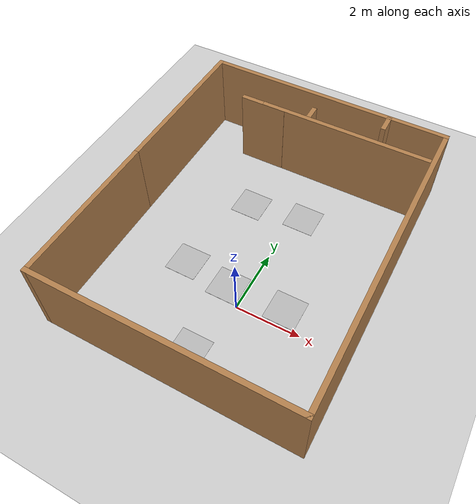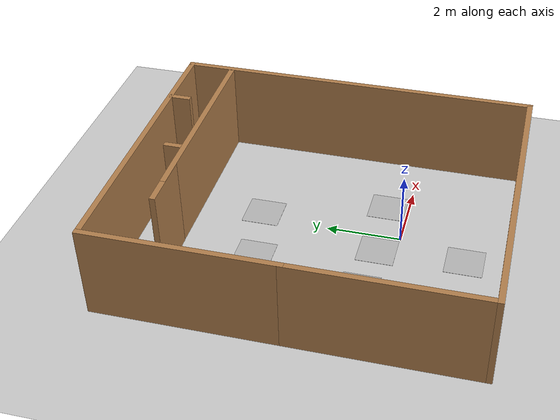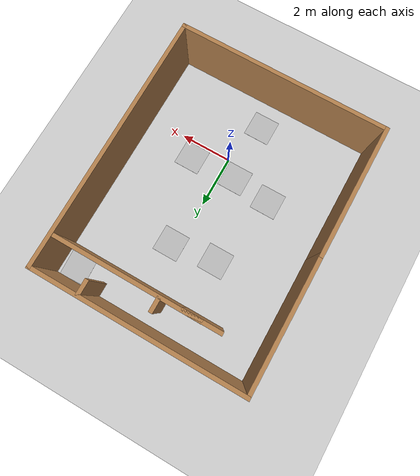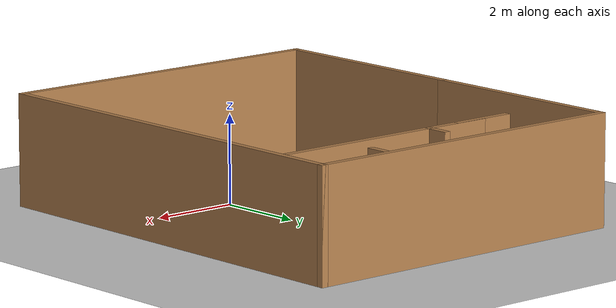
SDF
<sdf version="1.7">
 <world name="default">
  <light name="sun" type="directional">
   <pose>0 0 10 0 -0 0</pose>
   <diffuse>0.8 0.8 0.8 1</diffuse>
   <specular>0.2 0.2 0.2 1</specular>
   <attenuation>
    <range>1000</range>
    <constant>0.9</constant>
    <linear>0.01</linear>
    <quadratic>0.001</quadratic>
   </attenuation>
   <direction>-0.5 0.1 -0.9</direction>
   <spot><inner_angle>0</inner_angle><outer_angle>0</outer_angle><falloff>0</falloff></spot>
  </light>
  <model name="ground_plane">
   <static>1</static>
   <link name="link">
    <collision name="collision">
     <geometry><plane><normal>0 0 1</normal><size>100 100</size></plane></geometry>
     <surface>
      <contact><collide_bitmask>65535</collide_bitmask></contact>
      <friction><ode><mu>100</mu><mu2>50</mu2></ode></friction>
     </surface>
    </collision>
    <visual name="visual">
     <cast_shadows>0</cast_shadows>
     <geometry><plane><normal>0 0 1</normal><size>100 100</size></plane></geometry>
     <material>
      <script><uri>file://media/materials/scripts/gazebo.material</uri><name>Gazebo/Grey</name></script>
     </material>
     <receive_shadows>1</receive_shadows>
     <render_order>0</render_order>
    </visual>
   </link>
  </model>
  <gravity>0 0 -9.8</gravity>
  <magnetic_field>6e-06 2.3e-05 -4.2e-05</magnetic_field>
  <atmosphere type="adiabatic"/>
  <physics type="ode">
   <max_step_size>0.001</max_step_size>
   <real_time_factor>1</real_time_factor>
   <real_time_update_rate>1000</real_time_update_rate>
  </physics>
  <scene>
   <ambient>0.4 0.4 0.4 1</ambient>
   <background>0.7 0.7 0.7 1</background>
   <shadows>1</shadows>
   <fog><type>none</type></fog>
  </scene>
  <spherical_coordinates>
   <surface_model>EARTH_WGS84</surface_model>
   <latitude_deg>0</latitude_deg>
   <longitude_deg>0</longitude_deg>
   <elevation>0</elevation>
   <heading_deg>0</heading_deg>
  </spherical_coordinates>
  <model name="toudi2">
   <pose>-0.485 2.03479 0 0 -0 0</pose>
   <link name="Wall_1">
    <collision name="Wall_1_Collision">
     <geometry><box><size>8 0.15 2.5</size></box></geometry>
     <pose>0 0 1.25 0 -0 0</pose>
    </collision>
    <visual name="Wall_1_Visual">
     <pose>0 0 1.25 0 -0 0</pose>
     <geometry><box><size>8 0.15 2.5</size></box></geometry>
     <material>
      <script><uri>file://media/materials/scripts/gazebo.material</uri><name>Gazebo/Wood</name></script>
      <ambient>1 1 1 1</ambient>
     </material>
     <meta><layer>0</layer></meta>
     <receive_shadows>1</receive_shadows>
     <render_order>1</render_order>
    </visual>
    <pose>-0 -4.86479 0 0 -0 3.14159</pose>
   </link>
   <link name="Wall_11">
    <collision name="Wall_11_Collision">
     <geometry><box><size>9.85 0.15 2.5</size></box></geometry>
     <pose>0 0 1.25 0 -0 0</pose>
    </collision>
    <visual name="Wall_11_Visual">
     <pose>0 0 1.25 0 -0 0</pose>
     <geometry><box><size>9.85 0.15 2.5</size></box></geometry>
     <material>
      <script><uri>file://media/materials/scripts/gazebo.material</uri><name>Gazebo/Wood</name></script>
      <ambient>1 1 1 1</ambient>
     </material>
     <meta><layer>0</layer></meta>
     <receive_shadows>1</receive_shadows>
     <render_order>1</render_order>
    </visual>
    <pose>3.925 -0.01479 0 0 -0 1.5708</pose>
   </link>
   <link name="Wall_13">
    <collision name="Wall_13_Collision">
     <geometry><box><size>5.5 0.15 2.5</size></box></geometry>
     <pose>0 0 1.25 0 -0 0</pose>
    </collision>
    <visual name="Wall_13_Visual">
     <pose>0 0 1.25 0 -0 0</pose>
     <geometry><box><size>5.5 0.15 2.5</size></box></geometry>
     <material>
      <script><uri>file://media/materials/scripts/gazebo.material</uri><name>Gazebo/Wood</name></script>
      <ambient>1 1 1 1</ambient>
     </material>
     <meta><layer>0</layer></meta>
     <receive_shadows>1</receive_shadows>
     <render_order>1</render_order>
    </visual>
    <pose>1.09114 3.61479 0 0 -0 3.14159</pose>
   </link>
   <link name="Wall_4">
    <collision name="Wall_4_Collision">
     <geometry><box><size>5 0.15 2.5</size></box></geometry>
     <pose>0 0 1.25 0 -0 0</pose>
    </collision>
    <visual name="Wall_4_Visual">
     <pose>0 0 1.25 0 -0 0</pose>
     <geometry><box><size>5 0.15 2.5</size></box></geometry>
     <material>
      <script><uri>file://media/materials/scripts/gazebo.material</uri><name>Gazebo/Wood</name></script>
      <ambient>1 1 1 1</ambient>
     </material>
     <meta><layer>0</layer></meta>
     <receive_shadows>1</receive_shadows>
     <render_order>1</render_order>
    </visual>
    <pose>-3.925 -2.43979 0 0 -0 1.5708</pose>
   </link>
   <link name="Wall_6">
    <collision name="Wall_6_Collision">
     <geometry><box><size>5 0.15 2.5</size></box></geometry>
     <pose>0 0 1.25 0 -0 0</pose>
    </collision>
    <visual name="Wall_6_Visual">
     <pose>0 0 1.25 0 -0 0</pose>
     <geometry><box><size>5 0.15 2.5</size></box></geometry>
     <material>
      <script><uri>file://media/materials/scripts/gazebo.material</uri><name>Gazebo/Wood</name></script>
      <ambient>1 1 1 1</ambient>
     </material>
     <meta><layer>0</layer></meta>
     <receive_shadows>1</receive_shadows>
     <render_order>1</render_order>
    </visual>
    <pose>-3.925 2.41021 0 0 -0 1.5708</pose>
   </link>
   <link name="Wall_9">
    <collision name="Wall_9_Collision">
     <geometry><box><size>8 0.15 2.5</size></box></geometry>
     <pose>0 0 1.25 0 -0 0</pose>
    </collision>
    <visual name="Wall_9_Visual">
     <pose>0 0 1.25 0 -0 0</pose>
     <geometry><box><size>8 0.15 2.5</size></box></geometry>
     <material>
      <script><uri>file://media/materials/scripts/gazebo.material</uri><name>Gazebo/Wood</name></script>
      <ambient>1 1 1 1</ambient>
     </material>
     <meta><layer>0</layer></meta>
     <receive_shadows>1</receive_shadows>
     <render_order>1</render_order>
    </visual>
    <pose>-0 4.83521 0 0 -0 0</pose>
   </link>
   <static>1</static>
  </model>
  <model name="Wall_14">
   <pose>-2.12358 5.64223 0 0 0 -3.13988</pose>
   <static>1</static>
   <link name="link">
    <collision name="collision">
     <geometry><box><size>1.5 0.15 2.5</size></box></geometry>
     <pose>0 0 1.25 0 -0 0</pose>
    </collision>
    <visual name="visual">
     <pose>0 0 1.25 0 -0 0</pose>
     <geometry><box><size>1.5 0.15 2.5</size></box></geometry>
     <material>
      <script><uri>file://media/materials/scripts/gazebo.material</uri><name>Gazebo/Wood</name></script>
      <ambient>1 1 1 1</ambient>
     </material>
     <receive_shadows>1</receive_shadows>
     <render_order>1</render_order>
    </visual>
   </link>
  </model>
  <model name="Wall_20">
   <pose>-0.605415 5.89706 0 0 -0 1.5708</pose>
   <static>1</static>
   <link name="link">
    <collision name="collision">
     <geometry><box><size>0.6 0.15 2.5</size></box></geometry>
     <pose>0 0 1.25 0 -0 0</pose>
    </collision>
    <visual name="visual">
     <geometry><box><size>0.6 0.15 2.5</size></box></geometry>
     <pose>0 0 1.25 0 -0 0</pose>
     <material>
      <script><uri>file://media/materials/scripts/gazebo.material</uri><name>Gazebo/Wood</name></script>
      <ambient>1 1 1 1</ambient>
     </material>
     <receive_shadows>1</receive_shadows>
    </visual>
   </link>
  </model>
  <model name="Wall_22">
   <pose>1.62961 6.58673 0 0 -0 1.5708</pose>
   <static>1</static>
   <link name="link">
    <collision name="collision">
     <geometry><box><size>0.6 0.15 2.5</size></box></geometry>
     <pose>0 0 1.25 0 -0 0</pose>
    </collision>
    <visual name="visual">
     <geometry><box><size>0.6 0.15 2.5</size></box></geometry>
     <pose>0 0 1.25 0 -0 0</pose>
     <material>
      <script><uri>file://media/materials/scripts/gazebo.material</uri><name>Gazebo/Wood</name></script>
      <ambient>1 1 1 1</ambient>
     </material>
     <receive_shadows>1</receive_shadows>
    </visual>
   </link>
  </model>
  <model name="dibao">
   <static>1</static>
   <link name="link">
    <pose>0 0 0.115 0 -0 0</pose>
    <inertial>
     <mass>3.39</mass>
     <inertia><ixx>0.58</ixx><ixy>0</ixy><ixz>0</ixz><iyy>0.58</iyy><iyz>0</iyz><izz>0.19</izz></inertia>
    </inertial>
    <collision name="collision"><geometry><box><size>0.496 0.496 0.005</size></box></geometry></collision>
    <visual name="visual">
     <geometry><box><size>1 1 0.005</size></box></geometry>
     <material>
      <script>
       <uri>model://dibao/materials/scripts</uri>
       <uri>model://dibao/materials/textures</uri>
       <name>Mark/Diffuse1</name>
      </script>
     </material>
     <receive_shadows>1</receive_shadows>
     <render_order>1</render_order>
    </visual>
   </link>
   <pose>-0.57481 0.520346 -0.1125 0 -0 0</pose>
  </model>
  <model name="qiaoliang">
   <static>1</static>
   <link name="link">
    <pose>0 0 0.115 0 -0 0</pose>
    <inertial>
     <mass>3.39</mass>
     <inertia><ixx>0.58</ixx><ixy>0</ixy><ixz>0</ixz><iyy>0.58</iyy><iyz>0</iyz><izz>0.19</izz></inertia>
    </inertial>
    <collision name="collision"><geometry><box><size>0.496 0.496 0.005</size></box></geometry></collision>
    <visual name="visual">
     <geometry><box><size>1 1 0.005</size></box></geometry>
     <material>
      <script>
       <uri>model://qiaoliang/materials/scripts</uri>
       <uri>model://qiaoliang/materials/textures</uri>
       <name>Mark/Diffuse3</name>
      </script>
     </material>
     <receive_shadows>1</receive_shadows>
     <render_order>1</render_order>
    </visual>
   </link>
   <pose>-2.09331 0.70456 -0.1125 0 -0 0</pose>
  </model>
  <model name="tanke">
   <static>1</static>
   <link name="link">
    <pose>0 0 0.115 0 -0 0</pose>
    <inertial>
     <mass>3.39</mass>
     <inertia><ixx>0.58</ixx><ixy>0</ixy><ixz>0</ixz><iyy>0.58</iyy><iyz>0</iyz><izz>0.19</izz></inertia>
    </inertial>
    <collision name="collision"><geometry><box><size>0.496 0.496 0.005</size></box></geometry></collision>
    <visual name="visual">
     <geometry><box><size>1 1 0.005</size></box></geometry>
     <material>
      <script>
       <uri>model://tanke/materials/scripts</uri>
       <uri>model://tanke/materials/textures</uri>
       <name>Mark/Diffuse4</name>
      </script>
     </material>
     <receive_shadows>1</receive_shadows>
     <render_order>1</render_order>
    </visual>
   </link>
   <pose>0.282735 3.85585 -0.1125 0 -0 0</pose>
  </model>
  <model name="zhangpeng">
   <static>1</static>
   <link name="link">
    <pose>0 0 0.115 0 -0 0</pose>
    <inertial>
     <mass>3.39</mass>
     <inertia><ixx>0.58</ixx><ixy>0</ixy><ixz>0</ixz><iyy>0.58</iyy><iyz>0</iyz><izz>0.19</izz></inertia>
    </inertial>
    <collision name="collision"><geometry><box><size>0.496 0.496 0.005</size></box></geometry></collision>
    <visual name="visual">
     <geometry><box><size>1 1 0.005</size></box></geometry>
     <material>
      <script>
       <uri>model://zhangpeng/materials/scripts</uri>
       <uri>model://zhangpeng/materials/textures</uri>
       <name>Mark/Diffuse5</name>
      </script>
     </material>
     <receive_shadows>1</receive_shadows>
     <render_order>1</render_order>
    </visual>
   </link>
   <pose>1.27572 0.581612 -0.1125 0 -0 0</pose>
  </model>
  <model name="zhuangjiache">
   <static>1</static>
   <link name="link">
    <pose>0 0 0.115 0 -0 0</pose>
    <inertial>
     <mass>3.39</mass>
     <inertia><ixx>0.58</ixx><ixy>0</ixy><ixz>0</ixz><iyy>0.58</iyy><iyz>0</iyz><izz>0.19</izz></inertia>
    </inertial>
    <collision name="collision"><geometry><box><size>0.496 0.496 0.005</size></box></geometry></collision>
    <visual name="visual">
     <geometry><box><size>1 1 0.005</size></box></geometry>
     <material>
      <script>
       <uri>model://zhuangjiache/materials/scripts</uri>
       <uri>model://zhuangjiache/materials/textures</uri>
       <name>Mark/Diffuse6</name>
      </script>
     </material>
     <receive_shadows>1</receive_shadows>
     <render_order>1</render_order>
    </visual>
   </link>
   <pose>-1.47375 3.62133 -0.1125 0 -0 0</pose>
  </model>
  <model name="landing_h">
   <static>1</static>
   <link name="link">
    <pose>0 0 0.0025 0 -0 0</pose>
    <collision name="collision"><geometry><box><size>1 1 0.005</size></box></geometry></collision>
    <visual name="visual">
     <geometry><box><size>1 1 0.005</size></box></geometry>
     <material>
      <script>
       <uri>model://landing_h/materials/scripts/</uri>
       <uri>model://landing_h/materials/textures/</uri>
       <name>Mark/LandingH</name>
      </script>
     </material>
     <receive_shadows>1</receive_shadows>
    </visual>
   </link>
   <pose>-0.493412 -1.77269 0 0 -0 1.57018</pose>
  </model>
  <model name="landing_h_clone">
   <static>1</static>
   <link name="link">
    <pose>0 0 0.0025 0 -0 0</pose>
    <collision name="collision"><geometry><box><size>1 1 0.005</size></box></geometry></collision>
    <visual name="visual">
     <geometry><box><size>1 1 0.005</size></box></geometry>
     <material>
      <script>
       <uri>model://landing_h/materials/scripts/</uri>
       <uri>model://landing_h/materials/textures/</uri>
       <name>Mark/LandingH</name>
      </script>
     </material>
     <receive_shadows>1</receive_shadows>
    </visual>
   </link>
   <pose>2.78088 6.28453 0 0 -0 -3.09751</pose>
  </model>
 </world>
</sdf>
